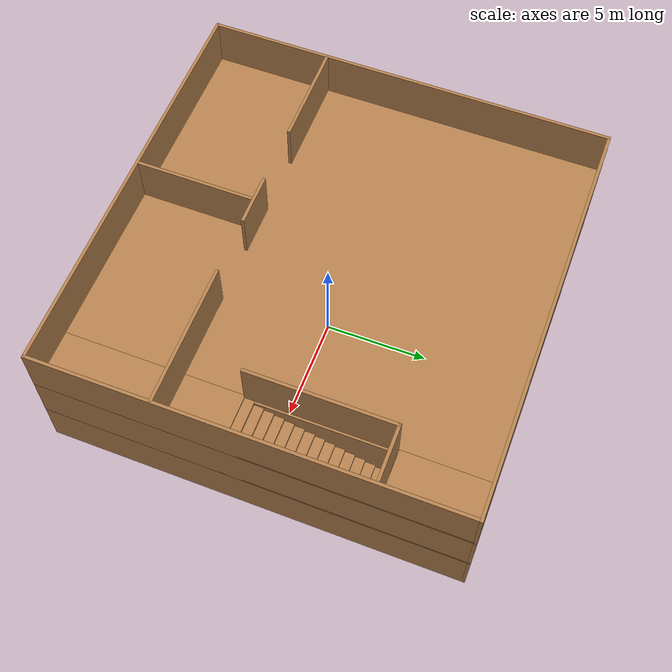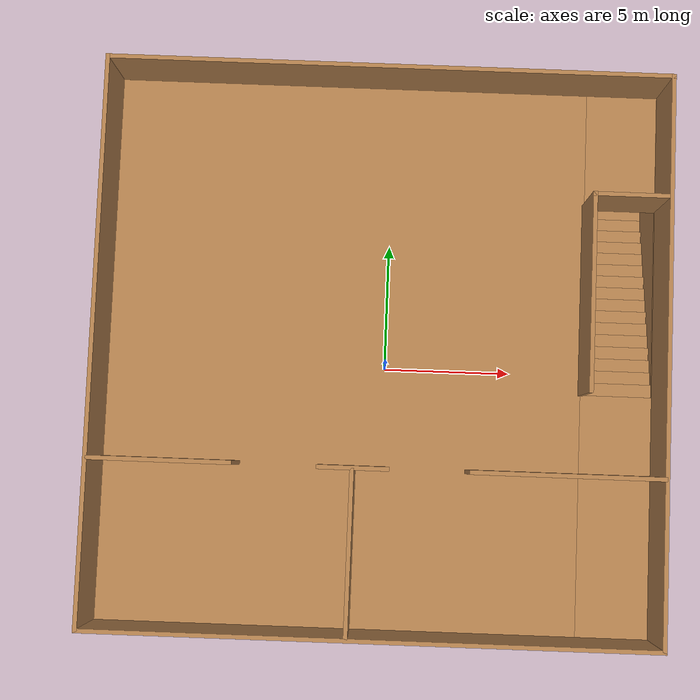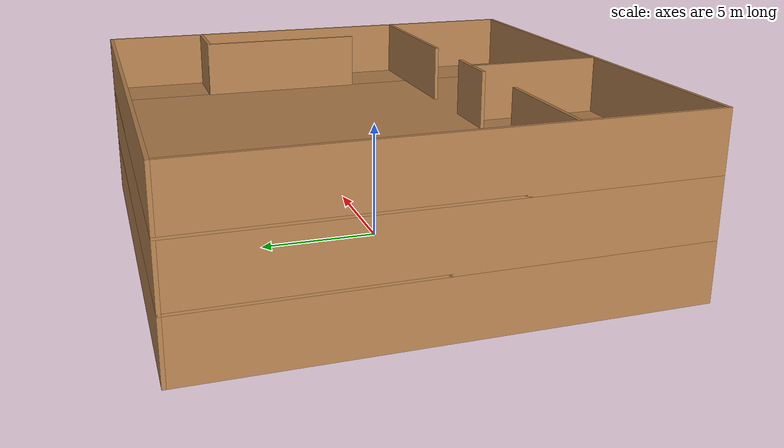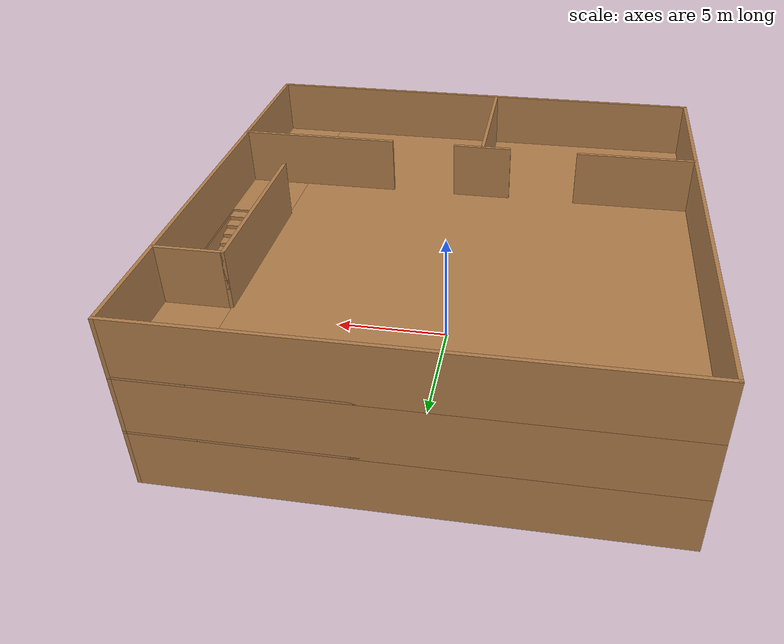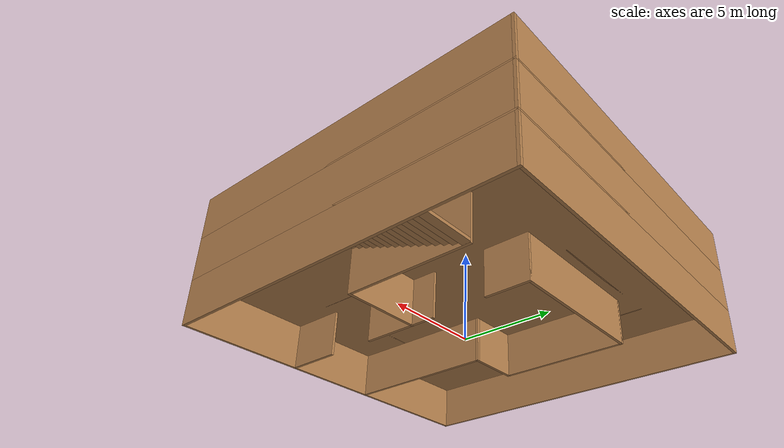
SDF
<?xml version='1.0'?>
<sdf version='1.6'>
  <model name='threefloors'>
    <pose frame=''>-0.192646 0.172435 0 0 -0 0</pose>
    <link name='Floor_0'>
      <pose frame=''>0 0.003245 2.5 0 -0 0</pose>
      <visual name='Floor_0_Visual_0'>
        <pose frame=''>-1.3609 0 0.05 0 -0 0</pose>
        <geometry>
          <box>
            <size>17.2782 20 0.1</size>
          </box>
        </geometry>
        <material>
          <script>
            <uri>file://media/materials/scripts/gazebo.material</uri>
            <name>Gazebo/Wood</name>
          </script>
          <ambient>1 1 1 1</ambient>
        </material>
      </visual>
      <collision name='Floor_0_Collision_0'>
        <geometry>
          <box>
            <size>17.2782 20 0.1</size>
          </box>
        </geometry>
        <pose frame=''>-1.3609 0 0.05 0 -0 0</pose>
      </collision>
      <visual name='Floor_0_Visual_1'>
        <pose frame=''>8.6391 -5.61139 0.05 0 -0 0</pose>
        <geometry>
          <box>
            <size>2.72181 8.77723 0.1</size>
          </box>
        </geometry>
        <material>
          <script>
            <uri>file://media/materials/scripts/gazebo.material</uri>
            <name>Gazebo/Wood</name>
          </script>
          <ambient>1 1 1 1</ambient>
        </material>
      </visual>
      <collision name='Floor_0_Collision_1'>
        <geometry>
          <box>
            <size>2.72181 8.77723 0.1</size>
          </box>
        </geometry>
        <pose frame=''>8.6391 -5.61139 0.05 0 -0 0</pose>
      </collision>
      <visual name='Floor_0_Visual_2'>
        <pose frame=''>9.92615 4.38861 0.05 0 -0 0</pose>
        <geometry>
          <box>
            <size>0.1477 11.2228 0.1</size>
          </box>
        </geometry>
        <material>
          <script>
            <uri>file://media/materials/scripts/gazebo.material</uri>
            <name>Gazebo/Wood</name>
          </script>
          <ambient>1 1 1 1</ambient>
        </material>
      </visual>
      <collision name='Floor_0_Collision_2'>
        <geometry>
          <box>
            <size>0.1477 11.2228 0.1</size>
          </box>
        </geometry>
        <pose frame=''>9.92615 4.38861 0.05 0 -0 0</pose>
      </collision>
      <visual name='Floor_0_Visual_3'>
        <pose frame=''>8.56525 7.86696 0.05 0 -0 0</pose>
        <geometry>
          <box>
            <size>2.57411 4.26607 0.1</size>
          </box>
        </geometry>
        <material>
          <script>
            <uri>file://media/materials/scripts/gazebo.material</uri>
            <name>Gazebo/Wood</name>
          </script>
          <ambient>1 1 1 1</ambient>
        </material>
      </visual>
      <collision name='Floor_0_Collision_3'>
        <geometry>
          <box>
            <size>2.57411 4.26607 0.1</size>
          </box>
        </geometry>
        <pose frame=''>8.56525 7.86696 0.05 0 -0 0</pose>
      </collision>
    </link>
    <link name='Floor_1'>
      <pose frame=''>0 0.003245 5 0 -0 0</pose>
      <visual name='Floor_1_Visual_0'>
        <pose frame=''>-1.36446 0 0.05 0 -0 0</pose>
        <geometry>
          <box>
            <size>17.2711 20 0.1</size>
          </box>
        </geometry>
        <material>
          <script>
            <uri>file://media/materials/scripts/gazebo.material</uri>
            <name>Gazebo/Wood</name>
          </script>
          <ambient>1 1 1 1</ambient>
        </material>
      </visual>
      <collision name='Floor_1_Collision_0'>
        <geometry>
          <box>
            <size>17.2711 20 0.1</size>
          </box>
        </geometry>
        <pose frame=''>-1.36446 0 0.05 0 -0 0</pose>
      </collision>
      <visual name='Floor_1_Visual_1'>
        <pose frame=''>8.63554 -5.61552 0.05 0 -0 0</pose>
        <geometry>
          <box>
            <size>2.72892 8.76896 0.1</size>
          </box>
        </geometry>
        <material>
          <script>
            <uri>file://media/materials/scripts/gazebo.material</uri>
            <name>Gazebo/Wood</name>
          </script>
          <ambient>1 1 1 1</ambient>
        </material>
      </visual>
      <collision name='Floor_1_Collision_1'>
        <geometry>
          <box>
            <size>2.72892 8.76896 0.1</size>
          </box>
        </geometry>
        <pose frame=''>8.63554 -5.61552 0.05 0 -0 0</pose>
      </collision>
      <visual name='Floor_1_Visual_2'>
        <pose frame=''>9.92198 4.38448 0.05 0 -0 0</pose>
        <geometry>
          <box>
            <size>0.15604 11.231 0.1</size>
          </box>
        </geometry>
        <material>
          <script>
            <uri>file://media/materials/scripts/gazebo.material</uri>
            <name>Gazebo/Wood</name>
          </script>
          <ambient>1 1 1 1</ambient>
        </material>
      </visual>
      <collision name='Floor_1_Collision_2'>
        <geometry>
          <box>
            <size>0.15604 11.231 0.1</size>
          </box>
        </geometry>
        <pose frame=''>9.92198 4.38448 0.05 0 -0 0</pose>
      </collision>
      <visual name='Floor_1_Visual_3'>
        <pose frame=''>8.55752 7.88084 0.05 0 -0 0</pose>
        <geometry>
          <box>
            <size>2.57288 4.23831 0.1</size>
          </box>
        </geometry>
        <material>
          <script>
            <uri>file://media/materials/scripts/gazebo.material</uri>
            <name>Gazebo/Wood</name>
          </script>
          <ambient>1 1 1 1</ambient>
        </material>
      </visual>
      <collision name='Floor_1_Collision_3'>
        <geometry>
          <box>
            <size>2.57288 4.23831 0.1</size>
          </box>
        </geometry>
        <pose frame=''>8.55752 7.88084 0.05 0 -0 0</pose>
      </collision>
    </link>
    <link name='Stairs_0'>
      <visual name='Stairs_0_Visual_0'>
        <pose frame=''>8.56525 5.50528 0.083333 0 -0 0</pose>
        <geometry>
          <box>
            <size>2.57411 0.46378 0.166667</size>
          </box>
        </geometry>
        <material>
          <script>
            <uri>file://media/materials/scripts/gazebo.material</uri>
            <name>Gazebo/Wood</name>
          </script>
          <ambient>1 1 1 1</ambient>
        </material>
      </visual>
      <collision name='Stairs_0_Collision_0'>
        <geometry>
          <box>
            <size>2.57411 0.46378 0.166667</size>
          </box>
        </geometry>
        <pose frame=''>8.56525 5.50528 0.083333 0 -0 0</pose>
      </collision>
      <visual name='Stairs_0_Visual_1'>
        <pose frame=''>8.56525 5.0415 0.25 0 -0 0</pose>
        <geometry>
          <box>
            <size>2.57411 0.46378 0.166667</size>
          </box>
        </geometry>
        <material>
          <script>
            <uri>file://media/materials/scripts/gazebo.material</uri>
            <name>Gazebo/Wood</name>
          </script>
          <ambient>1 1 1 1</ambient>
        </material>
      </visual>
      <collision name='Stairs_0_Collision_1'>
        <geometry>
          <box>
            <size>2.57411 0.46378 0.166667</size>
          </box>
        </geometry>
        <pose frame=''>8.56525 5.0415 0.25 0 -0 0</pose>
      </collision>
      <visual name='Stairs_0_Visual_2'>
        <pose frame=''>8.56525 4.57772 0.416667 0 -0 0</pose>
        <geometry>
          <box>
            <size>2.57411 0.46378 0.166667</size>
          </box>
        </geometry>
        <material>
          <script>
            <uri>file://media/materials/scripts/gazebo.material</uri>
            <name>Gazebo/Wood</name>
          </script>
          <ambient>1 1 1 1</ambient>
        </material>
      </visual>
      <collision name='Stairs_0_Collision_2'>
        <geometry>
          <box>
            <size>2.57411 0.46378 0.166667</size>
          </box>
        </geometry>
        <pose frame=''>8.56525 4.57772 0.416667 0 -0 0</pose>
      </collision>
      <visual name='Stairs_0_Visual_3'>
        <pose frame=''>8.56525 4.11394 0.583333 0 -0 0</pose>
        <geometry>
          <box>
            <size>2.57411 0.46378 0.166667</size>
          </box>
        </geometry>
        <material>
          <script>
            <uri>file://media/materials/scripts/gazebo.material</uri>
            <name>Gazebo/Wood</name>
          </script>
          <ambient>1 1 1 1</ambient>
        </material>
      </visual>
      <collision name='Stairs_0_Collision_3'>
        <geometry>
          <box>
            <size>2.57411 0.46378 0.166667</size>
          </box>
        </geometry>
        <pose frame=''>8.56525 4.11394 0.583333 0 -0 0</pose>
      </collision>
      <visual name='Stairs_0_Visual_4'>
        <pose frame=''>8.56525 3.65016 0.75 0 -0 0</pose>
        <geometry>
          <box>
            <size>2.57411 0.46378 0.166667</size>
          </box>
        </geometry>
        <material>
          <script>
            <uri>file://media/materials/scripts/gazebo.material</uri>
            <name>Gazebo/Wood</name>
          </script>
          <ambient>1 1 1 1</ambient>
        </material>
      </visual>
      <collision name='Stairs_0_Collision_4'>
        <geometry>
          <box>
            <size>2.57411 0.46378 0.166667</size>
          </box>
        </geometry>
        <pose frame=''>8.56525 3.65016 0.75 0 -0 0</pose>
      </collision>
      <visual name='Stairs_0_Visual_5'>
        <pose frame=''>8.56525 3.18638 0.916667 0 -0 0</pose>
        <geometry>
          <box>
            <size>2.57411 0.46378 0.166667</size>
          </box>
        </geometry>
        <material>
          <script>
            <uri>file://media/materials/scripts/gazebo.material</uri>
            <name>Gazebo/Wood</name>
          </script>
          <ambient>1 1 1 1</ambient>
        </material>
      </visual>
      <collision name='Stairs_0_Collision_5'>
        <geometry>
          <box>
            <size>2.57411 0.46378 0.166667</size>
          </box>
        </geometry>
        <pose frame=''>8.56525 3.18638 0.916667 0 -0 0</pose>
      </collision>
      <visual name='Stairs_0_Visual_6'>
        <pose frame=''>8.56525 2.7226 1.08333 0 -0 0</pose>
        <geometry>
          <box>
            <size>2.57411 0.46378 0.166667</size>
          </box>
        </geometry>
        <material>
          <script>
            <uri>file://media/materials/scripts/gazebo.material</uri>
            <name>Gazebo/Wood</name>
          </script>
          <ambient>1 1 1 1</ambient>
        </material>
      </visual>
      <collision name='Stairs_0_Collision_6'>
        <geometry>
          <box>
            <size>2.57411 0.46378 0.166667</size>
          </box>
        </geometry>
        <pose frame=''>8.56525 2.7226 1.08333 0 -0 0</pose>
      </collision>
      <visual name='Stairs_0_Visual_7'>
        <pose frame=''>8.56525 2.25882 1.25 0 -0 0</pose>
        <geometry>
          <box>
            <size>2.57411 0.46378 0.166667</size>
          </box>
        </geometry>
        <material>
          <script>
            <uri>file://media/materials/scripts/gazebo.material</uri>
            <name>Gazebo/Wood</name>
          </script>
          <ambient>1 1 1 1</ambient>
        </material>
      </visual>
      <collision name='Stairs_0_Collision_7'>
        <geometry>
          <box>
            <size>2.57411 0.46378 0.166667</size>
          </box>
        </geometry>
        <pose frame=''>8.56525 2.25882 1.25 0 -0 0</pose>
      </collision>
      <visual name='Stairs_0_Visual_8'>
        <pose frame=''>8.56525 1.79504 1.41667 0 -0 0</pose>
        <geometry>
          <box>
            <size>2.57411 0.46378 0.166667</size>
          </box>
        </geometry>
        <material>
          <script>
            <uri>file://media/materials/scripts/gazebo.material</uri>
            <name>Gazebo/Wood</name>
          </script>
          <ambient>1 1 1 1</ambient>
        </material>
      </visual>
      <collision name='Stairs_0_Collision_8'>
        <geometry>
          <box>
            <size>2.57411 0.46378 0.166667</size>
          </box>
        </geometry>
        <pose frame=''>8.56525 1.79504 1.41667 0 -0 0</pose>
      </collision>
      <visual name='Stairs_0_Visual_9'>
        <pose frame=''>8.56525 1.33126 1.58333 0 -0 0</pose>
        <geometry>
          <box>
            <size>2.57411 0.46378 0.166667</size>
          </box>
        </geometry>
        <material>
          <script>
            <uri>file://media/materials/scripts/gazebo.material</uri>
            <name>Gazebo/Wood</name>
          </script>
          <ambient>1 1 1 1</ambient>
        </material>
      </visual>
      <collision name='Stairs_0_Collision_9'>
        <geometry>
          <box>
            <size>2.57411 0.46378 0.166667</size>
          </box>
        </geometry>
        <pose frame=''>8.56525 1.33126 1.58333 0 -0 0</pose>
      </collision>
      <visual name='Stairs_0_Visual_10'>
        <pose frame=''>8.56525 0.867484 1.75 0 -0 0</pose>
        <geometry>
          <box>
            <size>2.57411 0.46378 0.166667</size>
          </box>
        </geometry>
        <material>
          <script>
            <uri>file://media/materials/scripts/gazebo.material</uri>
            <name>Gazebo/Wood</name>
          </script>
          <ambient>1 1 1 1</ambient>
        </material>
      </visual>
      <collision name='Stairs_0_Collision_10'>
        <geometry>
          <box>
            <size>2.57411 0.46378 0.166667</size>
          </box>
        </geometry>
        <pose frame=''>8.56525 0.867484 1.75 0 -0 0</pose>
      </collision>
      <visual name='Stairs_0_Visual_11'>
        <pose frame=''>8.56525 0.403704 1.91667 0 -0 0</pose>
        <geometry>
          <box>
            <size>2.57411 0.46378 0.166667</size>
          </box>
        </geometry>
        <material>
          <script>
            <uri>file://media/materials/scripts/gazebo.material</uri>
            <name>Gazebo/Wood</name>
          </script>
          <ambient>1 1 1 1</ambient>
        </material>
      </visual>
      <collision name='Stairs_0_Collision_11'>
        <geometry>
          <box>
            <size>2.57411 0.46378 0.166667</size>
          </box>
        </geometry>
        <pose frame=''>8.56525 0.403704 1.91667 0 -0 0</pose>
      </collision>
      <visual name='Stairs_0_Visual_12'>
        <pose frame=''>8.56525 -0.060075 2.08333 0 -0 0</pose>
        <geometry>
          <box>
            <size>2.57411 0.46378 0.166667</size>
          </box>
        </geometry>
        <material>
          <script>
            <uri>file://media/materials/scripts/gazebo.material</uri>
            <name>Gazebo/Wood</name>
          </script>
          <ambient>1 1 1 1</ambient>
        </material>
      </visual>
      <collision name='Stairs_0_Collision_12'>
        <geometry>
          <box>
            <size>2.57411 0.46378 0.166667</size>
          </box>
        </geometry>
        <pose frame=''>8.56525 -0.060075 2.08333 0 -0 0</pose>
      </collision>
      <visual name='Stairs_0_Visual_13'>
        <pose frame=''>8.56525 -0.523855 2.25 0 -0 0</pose>
        <geometry>
          <box>
            <size>2.57411 0.46378 0.166667</size>
          </box>
        </geometry>
        <material>
          <script>
            <uri>file://media/materials/scripts/gazebo.material</uri>
            <name>Gazebo/Wood</name>
          </script>
          <ambient>1 1 1 1</ambient>
        </material>
      </visual>
      <collision name='Stairs_0_Collision_13'>
        <geometry>
          <box>
            <size>2.57411 0.46378 0.166667</size>
          </box>
        </geometry>
        <pose frame=''>8.56525 -0.523855 2.25 0 -0 0</pose>
      </collision>
      <visual name='Stairs_0_Visual_14'>
        <pose frame=''>8.56525 -0.987635 2.41667 0 -0 0</pose>
        <geometry>
          <box>
            <size>2.57411 0.46378 0.166667</size>
          </box>
        </geometry>
        <material>
          <script>
            <uri>file://media/materials/scripts/gazebo.material</uri>
            <name>Gazebo/Wood</name>
          </script>
          <ambient>1 1 1 1</ambient>
        </material>
      </visual>
      <collision name='Stairs_0_Collision_14'>
        <geometry>
          <box>
            <size>2.57411 0.46378 0.166667</size>
          </box>
        </geometry>
        <pose frame=''>8.56525 -0.987635 2.41667 0 -0 0</pose>
      </collision>
    </link>
    <link name='Stairs_2'>
      <visual name='Stairs_2_Visual_0'>
        <pose frame=''>8.55752 5.53184 2.58333 0 -0 0</pose>
        <geometry>
          <box>
            <size>2.57288 0.466181 0.166667</size>
          </box>
        </geometry>
        <material>
          <script>
            <uri>file://media/materials/scripts/gazebo.material</uri>
            <name>Gazebo/Wood</name>
          </script>
          <ambient>1 1 1 1</ambient>
        </material>
      </visual>
      <collision name='Stairs_2_Collision_0'>
        <geometry>
          <box>
            <size>2.57288 0.466181 0.166667</size>
          </box>
        </geometry>
        <pose frame=''>8.55752 5.53184 2.58333 0 -0 0</pose>
      </collision>
      <visual name='Stairs_2_Visual_1'>
        <pose frame=''>8.55752 5.06566 2.75 0 -0 0</pose>
        <geometry>
          <box>
            <size>2.57288 0.466181 0.166667</size>
          </box>
        </geometry>
        <material>
          <script>
            <uri>file://media/materials/scripts/gazebo.material</uri>
            <name>Gazebo/Wood</name>
          </script>
          <ambient>1 1 1 1</ambient>
        </material>
      </visual>
      <collision name='Stairs_2_Collision_1'>
        <geometry>
          <box>
            <size>2.57288 0.466181 0.166667</size>
          </box>
        </geometry>
        <pose frame=''>8.55752 5.06566 2.75 0 -0 0</pose>
      </collision>
      <visual name='Stairs_2_Visual_2'>
        <pose frame=''>8.55752 4.59948 2.91667 0 -0 0</pose>
        <geometry>
          <box>
            <size>2.57288 0.466181 0.166667</size>
          </box>
        </geometry>
        <material>
          <script>
            <uri>file://media/materials/scripts/gazebo.material</uri>
            <name>Gazebo/Wood</name>
          </script>
          <ambient>1 1 1 1</ambient>
        </material>
      </visual>
      <collision name='Stairs_2_Collision_2'>
        <geometry>
          <box>
            <size>2.57288 0.466181 0.166667</size>
          </box>
        </geometry>
        <pose frame=''>8.55752 4.59948 2.91667 0 -0 0</pose>
      </collision>
      <visual name='Stairs_2_Visual_3'>
        <pose frame=''>8.55752 4.1333 3.08333 0 -0 0</pose>
        <geometry>
          <box>
            <size>2.57288 0.466181 0.166667</size>
          </box>
        </geometry>
        <material>
          <script>
            <uri>file://media/materials/scripts/gazebo.material</uri>
            <name>Gazebo/Wood</name>
          </script>
          <ambient>1 1 1 1</ambient>
        </material>
      </visual>
      <collision name='Stairs_2_Collision_3'>
        <geometry>
          <box>
            <size>2.57288 0.466181 0.166667</size>
          </box>
        </geometry>
        <pose frame=''>8.55752 4.1333 3.08333 0 -0 0</pose>
      </collision>
      <visual name='Stairs_2_Visual_4'>
        <pose frame=''>8.55752 3.66711 3.25 0 -0 0</pose>
        <geometry>
          <box>
            <size>2.57288 0.466181 0.166667</size>
          </box>
        </geometry>
        <material>
          <script>
            <uri>file://media/materials/scripts/gazebo.material</uri>
            <name>Gazebo/Wood</name>
          </script>
          <ambient>1 1 1 1</ambient>
        </material>
      </visual>
      <collision name='Stairs_2_Collision_4'>
        <geometry>
          <box>
            <size>2.57288 0.466181 0.166667</size>
          </box>
        </geometry>
        <pose frame=''>8.55752 3.66711 3.25 0 -0 0</pose>
      </collision>
      <visual name='Stairs_2_Visual_5'>
        <pose frame=''>8.55752 3.20093 3.41667 0 -0 0</pose>
        <geometry>
          <box>
            <size>2.57288 0.466181 0.166667</size>
          </box>
        </geometry>
        <material>
          <script>
            <uri>file://media/materials/scripts/gazebo.material</uri>
            <name>Gazebo/Wood</name>
          </script>
          <ambient>1 1 1 1</ambient>
        </material>
      </visual>
      <collision name='Stairs_2_Collision_5'>
        <geometry>
          <box>
            <size>2.57288 0.466181 0.166667</size>
          </box>
        </geometry>
        <pose frame=''>8.55752 3.20093 3.41667 0 -0 0</pose>
      </collision>
      <visual name='Stairs_2_Visual_6'>
        <pose frame=''>8.55752 2.73475 3.58333 0 -0 0</pose>
        <geometry>
          <box>
            <size>2.57288 0.466181 0.166667</size>
          </box>
        </geometry>
        <material>
          <script>
            <uri>file://media/materials/scripts/gazebo.material</uri>
            <name>Gazebo/Wood</name>
          </script>
          <ambient>1 1 1 1</ambient>
        </material>
      </visual>
      <collision name='Stairs_2_Collision_6'>
        <geometry>
          <box>
            <size>2.57288 0.466181 0.166667</size>
          </box>
        </geometry>
        <pose frame=''>8.55752 2.73475 3.58333 0 -0 0</pose>
      </collision>
      <visual name='Stairs_2_Visual_7'>
        <pose frame=''>8.55752 2.26857 3.75 0 -0 0</pose>
        <geometry>
          <box>
            <size>2.57288 0.466181 0.166667</size>
          </box>
        </geometry>
        <material>
          <script>
            <uri>file://media/materials/scripts/gazebo.material</uri>
            <name>Gazebo/Wood</name>
          </script>
          <ambient>1 1 1 1</ambient>
        </material>
      </visual>
      <collision name='Stairs_2_Collision_7'>
        <geometry>
          <box>
            <size>2.57288 0.466181 0.166667</size>
          </box>
        </geometry>
        <pose frame=''>8.55752 2.26857 3.75 0 -0 0</pose>
      </collision>
      <visual name='Stairs_2_Visual_8'>
        <pose frame=''>8.55752 1.80239 3.91667 0 -0 0</pose>
        <geometry>
          <box>
            <size>2.57288 0.466181 0.166667</size>
          </box>
        </geometry>
        <material>
          <script>
            <uri>file://media/materials/scripts/gazebo.material</uri>
            <name>Gazebo/Wood</name>
          </script>
          <ambient>1 1 1 1</ambient>
        </material>
      </visual>
      <collision name='Stairs_2_Collision_8'>
        <geometry>
          <box>
            <size>2.57288 0.466181 0.166667</size>
          </box>
        </geometry>
        <pose frame=''>8.55752 1.80239 3.91667 0 -0 0</pose>
      </collision>
      <visual name='Stairs_2_Visual_9'>
        <pose frame=''>8.55752 1.33621 4.08333 0 -0 0</pose>
        <geometry>
          <box>
            <size>2.57288 0.466181 0.166667</size>
          </box>
        </geometry>
        <material>
          <script>
            <uri>file://media/materials/scripts/gazebo.material</uri>
            <name>Gazebo/Wood</name>
          </script>
          <ambient>1 1 1 1</ambient>
        </material>
      </visual>
      <collision name='Stairs_2_Collision_9'>
        <geometry>
          <box>
            <size>2.57288 0.466181 0.166667</size>
          </box>
        </geometry>
        <pose frame=''>8.55752 1.33621 4.08333 0 -0 0</pose>
      </collision>
      <visual name='Stairs_2_Visual_10'>
        <pose frame=''>8.55752 0.870026 4.25 0 -0 0</pose>
        <geometry>
          <box>
            <size>2.57288 0.466181 0.166667</size>
          </box>
        </geometry>
        <material>
          <script>
            <uri>file://media/materials/scripts/gazebo.material</uri>
            <name>Gazebo/Wood</name>
          </script>
          <ambient>1 1 1 1</ambient>
        </material>
      </visual>
      <collision name='Stairs_2_Collision_10'>
        <geometry>
          <box>
            <size>2.57288 0.466181 0.166667</size>
          </box>
        </geometry>
        <pose frame=''>8.55752 0.870026 4.25 0 -0 0</pose>
      </collision>
      <visual name='Stairs_2_Visual_11'>
        <pose frame=''>8.55752 0.403844 4.41667 0 -0 0</pose>
        <geometry>
          <box>
            <size>2.57288 0.466181 0.166667</size>
          </box>
        </geometry>
        <material>
          <script>
            <uri>file://media/materials/scripts/gazebo.material</uri>
            <name>Gazebo/Wood</name>
          </script>
          <ambient>1 1 1 1</ambient>
        </material>
      </visual>
      <collision name='Stairs_2_Collision_11'>
        <geometry>
          <box>
            <size>2.57288 0.466181 0.166667</size>
          </box>
        </geometry>
        <pose frame=''>8.55752 0.403844 4.41667 0 -0 0</pose>
      </collision>
      <visual name='Stairs_2_Visual_12'>
        <pose frame=''>8.55752 -0.062337 4.58333 0 -0 0</pose>
        <geometry>
          <box>
            <size>2.57288 0.466181 0.166667</size>
          </box>
        </geometry>
        <material>
          <script>
            <uri>file://media/materials/scripts/gazebo.material</uri>
            <name>Gazebo/Wood</name>
          </script>
          <ambient>1 1 1 1</ambient>
        </material>
      </visual>
      <collision name='Stairs_2_Collision_12'>
        <geometry>
          <box>
            <size>2.57288 0.466181 0.166667</size>
          </box>
        </geometry>
        <pose frame=''>8.55752 -0.062337 4.58333 0 -0 0</pose>
      </collision>
      <visual name='Stairs_2_Visual_13'>
        <pose frame=''>8.55752 -0.528519 4.75 0 -0 0</pose>
        <geometry>
          <box>
            <size>2.57288 0.466181 0.166667</size>
          </box>
        </geometry>
        <material>
          <script>
            <uri>file://media/materials/scripts/gazebo.material</uri>
            <name>Gazebo/Wood</name>
          </script>
          <ambient>1 1 1 1</ambient>
        </material>
      </visual>
      <collision name='Stairs_2_Collision_13'>
        <geometry>
          <box>
            <size>2.57288 0.466181 0.166667</size>
          </box>
        </geometry>
        <pose frame=''>8.55752 -0.528519 4.75 0 -0 0</pose>
      </collision>
      <visual name='Stairs_2_Visual_14'>
        <pose frame=''>8.55752 -0.9947 4.91667 0 -0 0</pose>
        <geometry>
          <box>
            <size>2.57288 0.466181 0.166667</size>
          </box>
        </geometry>
        <material>
          <script>
            <uri>file://media/materials/scripts/gazebo.material</uri>
            <name>Gazebo/Wood</name>
          </script>
          <ambient>1 1 1 1</ambient>
        </material>
      </visual>
      <collision name='Stairs_2_Collision_14'>
        <geometry>
          <box>
            <size>2.57288 0.466181 0.166667</size>
          </box>
        </geometry>
        <pose frame=''>8.55752 -0.9947 4.91667 0 -0 0</pose>
      </collision>
    </link>
    <link name='Wall_10'>
      <collision name='Wall_10_Collision'>
        <geometry>
          <box>
            <size>20 0.15 2.5</size>
          </box>
        </geometry>
        <pose frame=''>0 0 1.25 0 -0 0</pose>
      </collision>
      <visual name='Wall_10_Visual'>
        <pose frame=''>0 0 1.25 0 -0 0</pose>
        <geometry>
          <box>
            <size>20 0.15 2.5</size>
          </box>
        </geometry>
        <material>
          <script>
            <uri>file://media/materials/scripts/gazebo.material</uri>
            <name>Gazebo/Wood</name>
          </script>
          <ambient>1 1 1 1</ambient>
        </material>
      </visual>
      <pose frame=''>9.925 0.003245 0 0 -0 1.5708</pose>
    </link>
    <link name='Wall_11'>
      <collision name='Wall_11_Collision'>
        <geometry>
          <box>
            <size>20 0.15 2.5</size>
          </box>
        </geometry>
        <pose frame=''>0 0 1.25 0 -0 0</pose>
      </collision>
      <visual name='Wall_11_Visual'>
        <pose frame=''>0 0 1.25 0 -0 0</pose>
        <geometry>
          <box>
            <size>20 0.15 2.5</size>
          </box>
        </geometry>
        <material>
          <script>
            <uri>file://media/materials/scripts/gazebo.material</uri>
            <name>Gazebo/Wood</name>
          </script>
          <ambient>1 1 1 1</ambient>
        </material>
      </visual>
      <pose frame=''>0 9.92825 0 0 -0 3.14159</pose>
    </link>
    <link name='Wall_13'>
      <collision name='Wall_13_Collision'>
        <geometry>
          <box>
            <size>20 0.15 2.5</size>
          </box>
        </geometry>
        <pose frame=''>0 0 1.25 0 -0 0</pose>
      </collision>
      <visual name='Wall_13_Visual'>
        <pose frame=''>0 0 1.25 0 -0 0</pose>
        <geometry>
          <box>
            <size>20 0.15 2.5</size>
          </box>
        </geometry>
        <material>
          <script>
            <uri>file://media/materials/scripts/gazebo.material</uri>
            <name>Gazebo/Wood</name>
          </script>
          <ambient>1 1 1 1</ambient>
        </material>
      </visual>
      <pose frame=''>-9.925 0.003245 2.5 0 0 -1.5708</pose>
    </link>
    <link name='Wall_14'>
      <collision name='Wall_14_Collision'>
        <geometry>
          <box>
            <size>20 0.15 2.5</size>
          </box>
        </geometry>
        <pose frame=''>0 0 1.25 0 -0 0</pose>
      </collision>
      <visual name='Wall_14_Visual'>
        <pose frame=''>0 0 1.25 0 -0 0</pose>
        <geometry>
          <box>
            <size>20 0.15 2.5</size>
          </box>
        </geometry>
        <material>
          <script>
            <uri>file://media/materials/scripts/gazebo.material</uri>
            <name>Gazebo/Wood</name>
          </script>
          <ambient>1 1 1 1</ambient>
        </material>
      </visual>
      <pose frame=''>0 -9.92175 2.5 0 -0 0</pose>
    </link>
    <link name='Wall_15'>
      <collision name='Wall_15_Collision'>
        <geometry>
          <box>
            <size>20 0.15 2.5</size>
          </box>
        </geometry>
        <pose frame=''>0 0 1.25 0 -0 0</pose>
      </collision>
      <visual name='Wall_15_Visual'>
        <pose frame=''>0 0 1.25 0 -0 0</pose>
        <geometry>
          <box>
            <size>20 0.15 2.5</size>
          </box>
        </geometry>
        <material>
          <script>
            <uri>file://media/materials/scripts/gazebo.material</uri>
            <name>Gazebo/Wood</name>
          </script>
          <ambient>1 1 1 1</ambient>
        </material>
      </visual>
      <pose frame=''>9.925 0.003245 2.5 0 -0 1.5708</pose>
    </link>
    <link name='Wall_16'>
      <collision name='Wall_16_Collision'>
        <geometry>
          <box>
            <size>20 0.15 2.5</size>
          </box>
        </geometry>
        <pose frame=''>0 0 1.25 0 -0 0</pose>
      </collision>
      <visual name='Wall_16_Visual'>
        <pose frame=''>0 0 1.25 0 -0 0</pose>
        <geometry>
          <box>
            <size>20 0.15 2.5</size>
          </box>
        </geometry>
        <material>
          <script>
            <uri>file://media/materials/scripts/gazebo.material</uri>
            <name>Gazebo/Wood</name>
          </script>
          <ambient>1 1 1 1</ambient>
        </material>
      </visual>
      <pose frame=''>0 9.92825 2.5 0 -0 3.14159</pose>
    </link>
    <link name='Wall_18'>
      <collision name='Wall_18_Collision'>
        <geometry>
          <box>
            <size>20 0.15 2.5</size>
          </box>
        </geometry>
        <pose frame=''>0 0 1.25 0 -0 0</pose>
      </collision>
      <visual name='Wall_18_Visual'>
        <pose frame=''>0 0 1.25 0 -0 0</pose>
        <geometry>
          <box>
            <size>20 0.15 2.5</size>
          </box>
        </geometry>
        <material>
          <script>
            <uri>file://media/materials/scripts/gazebo.material</uri>
            <name>Gazebo/Wood</name>
          </script>
          <ambient>1 1 1 1</ambient>
        </material>
      </visual>
      <pose frame=''>-9.925 0.003245 5 0 0 -1.5708</pose>
    </link>
    <link name='Wall_19'>
      <collision name='Wall_19_Collision'>
        <geometry>
          <box>
            <size>20 0.15 2.5</size>
          </box>
        </geometry>
        <pose frame=''>0 0 1.25 0 -0 0</pose>
      </collision>
      <visual name='Wall_19_Visual'>
        <pose frame=''>0 0 1.25 0 -0 0</pose>
        <geometry>
          <box>
            <size>20 0.15 2.5</size>
          </box>
        </geometry>
        <material>
          <script>
            <uri>file://media/materials/scripts/gazebo.material</uri>
            <name>Gazebo/Wood</name>
          </script>
          <ambient>1 1 1 1</ambient>
        </material>
      </visual>
      <pose frame=''>0 -9.92175 5 0 -0 0</pose>
    </link>
    <link name='Wall_20'>
      <collision name='Wall_20_Collision'>
        <geometry>
          <box>
            <size>20 0.15 2.5</size>
          </box>
        </geometry>
        <pose frame=''>0 0 1.25 0 -0 0</pose>
      </collision>
      <visual name='Wall_20_Visual'>
        <pose frame=''>0 0 1.25 0 -0 0</pose>
        <geometry>
          <box>
            <size>20 0.15 2.5</size>
          </box>
        </geometry>
        <material>
          <script>
            <uri>file://media/materials/scripts/gazebo.material</uri>
            <name>Gazebo/Wood</name>
          </script>
          <ambient>1 1 1 1</ambient>
        </material>
      </visual>
      <pose frame=''>9.925 0.003245 5 0 -0 1.5708</pose>
    </link>
    <link name='Wall_21'>
      <collision name='Wall_21_Collision'>
        <geometry>
          <box>
            <size>20 0.15 2.5</size>
          </box>
        </geometry>
        <pose frame=''>0 0 1.25 0 -0 0</pose>
      </collision>
      <visual name='Wall_21_Visual'>
        <pose frame=''>0 0 1.25 0 -0 0</pose>
        <geometry>
          <box>
            <size>20 0.15 2.5</size>
          </box>
        </geometry>
        <material>
          <script>
            <uri>file://media/materials/scripts/gazebo.material</uri>
            <name>Gazebo/Wood</name>
          </script>
          <ambient>1 1 1 1</ambient>
        </material>
      </visual>
      <pose frame=''>0 9.92825 5 0 -0 3.14159</pose>
    </link>
    <link name='Wall_22'>
      <collision name='Wall_22_Collision'>
        <geometry>
          <box>
            <size>4.25 0.15 2.5</size>
          </box>
        </geometry>
        <pose frame=''>0 0 1.25 0 -0 0</pose>
      </collision>
      <visual name='Wall_22_Visual'>
        <pose frame=''>0 0 1.25 0 -0 0</pose>
        <geometry>
          <box>
            <size>4.25 0.15 2.5</size>
          </box>
        </geometry>
        <material>
          <script>
            <uri>file://media/materials/scripts/gazebo.material</uri>
            <name>Gazebo/Wood</name>
          </script>
          <ambient>1 1 1 1</ambient>
        </material>
      </visual>
      <pose frame=''>5.11562 -1.2343 0 0 -0 3.14159</pose>
    </link>
    <link name='Wall_23'>
      <collision name='Wall_23_Collision'>
        <geometry>
          <box>
            <size>3 0.15 2.5</size>
          </box>
        </geometry>
        <pose frame=''>0 0 1.25 0 -0 0</pose>
      </collision>
      <visual name='Wall_23_Visual'>
        <pose frame=''>0 0 1.25 0 -0 0</pose>
        <geometry>
          <box>
            <size>3 0.15 2.5</size>
          </box>
        </geometry>
        <material>
          <script>
            <uri>file://media/materials/scripts/gazebo.material</uri>
            <name>Gazebo/Wood</name>
          </script>
          <ambient>1 1 1 1</ambient>
        </material>
      </visual>
      <pose frame=''>3.06562 -2.6593 0 0 0 -1.5708</pose>
    </link>
    <link name='Wall_25'>
      <collision name='Wall_25_Collision'>
        <geometry>
          <box>
            <size>3 0.15 2.5</size>
          </box>
        </geometry>
        <pose frame=''>0 0 1.25 0 -0 0</pose>
      </collision>
      <visual name='Wall_25_Visual'>
        <pose frame=''>0 0 1.25 0 -0 0</pose>
        <geometry>
          <box>
            <size>3 0.15 2.5</size>
          </box>
        </geometry>
        <material>
          <script>
            <uri>file://media/materials/scripts/gazebo.material</uri>
            <name>Gazebo/Wood</name>
          </script>
          <ambient>1 1 1 1</ambient>
        </material>
      </visual>
      <pose frame=''>3.05905 -8.39691 0 0 -0 1.5708</pose>
    </link>
    <link name='Wall_27'>
      <collision name='Wall_27_Collision'>
        <geometry>
          <box>
            <size>7 0.15 2.5</size>
          </box>
        </geometry>
        <pose frame=''>0 0 1.25 0 -0 0</pose>
      </collision>
      <visual name='Wall_27_Visual'>
        <pose frame=''>0 0 1.25 0 -0 0</pose>
        <geometry>
          <box>
            <size>7 0.15 2.5</size>
          </box>
        </geometry>
        <material>
          <script>
            <uri>file://media/materials/scripts/gazebo.material</uri>
            <name>Gazebo/Wood</name>
          </script>
          <ambient>1 1 1 1</ambient>
        </material>
      </visual>
      <pose frame=''>7.16563 2.1907 0 0 -0 1.5708</pose>
    </link>
    <link name='Wall_29'>
      <collision name='Wall_29_Collision'>
        <geometry>
          <box>
            <size>8.75 0.15 2.5</size>
          </box>
        </geometry>
        <pose frame=''>0 0 1.25 0 -0 0</pose>
      </collision>
      <visual name='Wall_29_Visual'>
        <pose frame=''>0 0 1.25 0 -0 0</pose>
        <geometry>
          <box>
            <size>8.75 0.15 2.5</size>
          </box>
        </geometry>
        <material>
          <script>
            <uri>file://media/materials/scripts/gazebo.material</uri>
            <name>Gazebo/Wood</name>
          </script>
          <ambient>1 1 1 1</ambient>
        </material>
      </visual>
      <pose frame=''>-2.3117 -5.62824 0 0 -0 1.5708</pose>
    </link>
    <link name='Wall_30'>
      <collision name='Wall_30_Collision'>
        <geometry>
          <box>
            <size>3 0.15 2.5</size>
          </box>
        </geometry>
        <pose frame=''>0 0 1.25 0 -0 0</pose>
      </collision>
      <visual name='Wall_30_Visual'>
        <pose frame=''>0 0 1.25 0 -0 0</pose>
        <geometry>
          <box>
            <size>3 0.15 2.5</size>
          </box>
        </geometry>
        <material>
          <script>
            <uri>file://media/materials/scripts/gazebo.material</uri>
            <name>Gazebo/Wood</name>
          </script>
          <ambient>1 1 1 1</ambient>
        </material>
      </visual>
      <pose frame=''>-3.7367 -1.32824 0 0 -0 3.14159</pose>
    </link>
    <link name='Wall_34'>
      <collision name='Wall_34_Collision'>
        <geometry>
          <box>
            <size>7.25 0.15 2.5</size>
          </box>
        </geometry>
        <pose frame=''>0 0 1.25 0 -0 0</pose>
      </collision>
      <visual name='Wall_34_Visual'>
        <pose frame=''>0 0 1.25 0 -0 0</pose>
        <geometry>
          <box>
            <size>7.25 0.15 2.5</size>
          </box>
        </geometry>
        <material>
          <script>
            <uri>file://media/materials/scripts/gazebo.material</uri>
            <name>Gazebo/Wood</name>
          </script>
          <ambient>1 1 1 1</ambient>
        </material>
      </visual>
      <pose frame=''>-5.1617 2.22175 0 0 -0 1.5708</pose>
    </link>
    <link name='Wall_37'>
      <collision name='Wall_37_Collision'>
        <geometry>
          <box>
            <size>8.5 0.15 2.5</size>
          </box>
        </geometry>
        <pose frame=''>0 0 1.25 0 -0 0</pose>
      </collision>
      <visual name='Wall_37_Visual'>
        <pose frame=''>0 0 1.25 0 -0 0</pose>
        <geometry>
          <box>
            <size>8.5 0.15 2.5</size>
          </box>
        </geometry>
        <material>
          <script>
            <uri>file://media/materials/scripts/gazebo.material</uri>
            <name>Gazebo/Wood</name>
          </script>
          <ambient>1 1 1 1</ambient>
        </material>
      </visual>
      <pose frame=''>-0.986701 5.77175 0 0 -0 0</pose>
    </link>
    <link name='Wall_38'>
      <collision name='Wall_38_Collision'>
        <geometry>
          <box>
            <size>2.5 0.15 2.5</size>
          </box>
        </geometry>
        <pose frame=''>0 0 1.25 0 -0 0</pose>
      </collision>
      <visual name='Wall_38_Visual'>
        <pose frame=''>0 0 1.25 0 -0 0</pose>
        <geometry>
          <box>
            <size>2.5 0.15 2.5</size>
          </box>
        </geometry>
        <material>
          <script>
            <uri>file://media/materials/scripts/gazebo.material</uri>
            <name>Gazebo/Wood</name>
          </script>
          <ambient>1 1 1 1</ambient>
        </material>
      </visual>
      <pose frame=''>3.1883 4.59675 0 0 0 -1.5708</pose>
    </link>
    <link name='Wall_40'>
      <collision name='Wall_40_Collision'>
        <geometry>
          <box>
            <size>1.5 0.15 2.5</size>
          </box>
        </geometry>
        <pose frame=''>0 0 1.25 0 -0 0</pose>
      </collision>
      <visual name='Wall_40_Visual'>
        <pose frame=''>0 0 1.25 0 -0 0</pose>
        <geometry>
          <box>
            <size>1.5 0.15 2.5</size>
          </box>
        </geometry>
        <material>
          <script>
            <uri>file://media/materials/scripts/gazebo.material</uri>
            <name>Gazebo/Wood</name>
          </script>
          <ambient>1 1 1 1</ambient>
        </material>
      </visual>
      <pose frame=''>3.06562 -0.559299 0 0 -0 1.5708</pose>
    </link>
    <link name='Wall_42'>
      <collision name='Wall_42_Collision'>
        <geometry>
          <box>
            <size>7 0.15 2.5</size>
          </box>
        </geometry>
        <pose frame=''>0 0 1.25 0 -0 0</pose>
      </collision>
      <visual name='Wall_42_Visual'>
        <pose frame=''>0 0 1.25 0 -0 0</pose>
        <geometry>
          <box>
            <size>7 0.15 2.5</size>
          </box>
        </geometry>
        <material>
          <script>
            <uri>file://media/materials/scripts/gazebo.material</uri>
            <name>Gazebo/Wood</name>
          </script>
          <ambient>1 1 1 1</ambient>
        </material>
      </visual>
      <pose frame=''>7.36813 2.38799 2.5 0 0 -1.5708</pose>
    </link>
    <link name='Wall_43'>
      <collision name='Wall_43_Collision'>
        <geometry>
          <box>
            <size>6 0.15 2.5</size>
          </box>
        </geometry>
        <pose frame=''>0 0 1.25 0 -0 0</pose>
      </collision>
      <visual name='Wall_43_Visual'>
        <pose frame=''>0 0 1.25 0 -0 0</pose>
        <geometry>
          <box>
            <size>6 0.15 2.5</size>
          </box>
        </geometry>
        <material>
          <script>
            <uri>file://media/materials/scripts/gazebo.material</uri>
            <name>Gazebo/Wood</name>
          </script>
          <ambient>1 1 1 1</ambient>
        </material>
      </visual>
      <pose frame=''>7.36813 -3.96201 2.5 0 0 -1.5708</pose>
    </link>
    <link name='Wall_45'>
      <collision name='Wall_45_Collision'>
        <geometry>
          <box>
            <size>16.75 0.15 2.5</size>
          </box>
        </geometry>
        <pose frame=''>0 0 1.25 0 -0 0</pose>
      </collision>
      <visual name='Wall_45_Visual'>
        <pose frame=''>0 0 1.25 0 -0 0</pose>
        <geometry>
          <box>
            <size>16.75 0.15 2.5</size>
          </box>
        </geometry>
        <material>
          <script>
            <uri>file://media/materials/scripts/gazebo.material</uri>
            <name>Gazebo/Wood</name>
          </script>
          <ambient>1 1 1 1</ambient>
        </material>
      </visual>
      <pose frame=''>3.7949 1.51823 2.5 0 -0 1.5708</pose>
    </link>
    <link name='Wall_47'>
      <collision name='Wall_47_Collision'>
        <geometry>
          <box>
            <size>10.75 0.15 2.5</size>
          </box>
        </geometry>
        <pose frame=''>0 0 1.25 0 -0 0</pose>
      </collision>
      <visual name='Wall_47_Visual'>
        <pose frame=''>0 0 1.25 0 -0 0</pose>
        <geometry>
          <box>
            <size>10.75 0.15 2.5</size>
          </box>
        </geometry>
        <material>
          <script>
            <uri>file://media/materials/scripts/gazebo.material</uri>
            <name>Gazebo/Wood</name>
          </script>
          <ambient>1 1 1 1</ambient>
        </material>
      </visual>
      <pose frame=''>-1.5051 -6.78177 2.5 0 -0 3.14159</pose>
    </link>
    <link name='Wall_48'>
      <collision name='Wall_48_Collision'>
        <geometry>
          <box>
            <size>13.25 0.15 2.5</size>
          </box>
        </geometry>
        <pose frame=''>0 0 1.25 0 -0 0</pose>
      </collision>
      <visual name='Wall_48_Visual'>
        <pose frame=''>0 0 1.25 0 -0 0</pose>
        <geometry>
          <box>
            <size>13.25 0.15 2.5</size>
          </box>
        </geometry>
        <material>
          <script>
            <uri>file://media/materials/scripts/gazebo.material</uri>
            <name>Gazebo/Wood</name>
          </script>
          <ambient>1 1 1 1</ambient>
        </material>
      </visual>
      <pose frame=''>-6.8051 -0.231768 2.5 0 -0 1.5708</pose>
    </link>
    <link name='Wall_49'>
      <collision name='Wall_49_Collision'>
        <geometry>
          <box>
            <size>7.75 0.15 2.5</size>
          </box>
        </geometry>
        <pose frame=''>0 0 1.25 0 -0 0</pose>
      </collision>
      <visual name='Wall_49_Visual'>
        <pose frame=''>0 0 1.25 0 -0 0</pose>
        <geometry>
          <box>
            <size>7.75 0.15 2.5</size>
          </box>
        </geometry>
        <material>
          <script>
            <uri>file://media/materials/scripts/gazebo.material</uri>
            <name>Gazebo/Wood</name>
          </script>
          <ambient>1 1 1 1</ambient>
        </material>
      </visual>
      <pose frame=''>-3.0051 6.31823 2.5 0 -0 0</pose>
    </link>
    <link name='Wall_52'>
      <collision name='Wall_52_Collision'>
        <geometry>
          <box>
            <size>10.25 0.15 2.5</size>
          </box>
        </geometry>
        <pose frame=''>0 0 1.25 0 -0 0</pose>
      </collision>
      <visual name='Wall_52_Visual'>
        <pose frame=''>0 0 1.25 0 -0 0</pose>
        <geometry>
          <box>
            <size>10.25 0.15 2.5</size>
          </box>
        </geometry>
        <material>
          <script>
            <uri>file://media/materials/scripts/gazebo.material</uri>
            <name>Gazebo/Wood</name>
          </script>
          <ambient>1 1 1 1</ambient>
        </material>
      </visual>
      <pose frame=''>0.794897 1.26823 2.5 0 0 -1.5708</pose>
    </link>
    <link name='Wall_53'>
      <collision name='Wall_53_Collision'>
        <geometry>
          <box>
            <size>4.75 0.15 2.5</size>
          </box>
        </geometry>
        <pose frame=''>0 0 1.25 0 -0 0</pose>
      </collision>
      <visual name='Wall_53_Visual'>
        <pose frame=''>0 0 1.25 0 -0 0</pose>
        <geometry>
          <box>
            <size>4.75 0.15 2.5</size>
          </box>
        </geometry>
        <material>
          <script>
            <uri>file://media/materials/scripts/gazebo.material</uri>
            <name>Gazebo/Wood</name>
          </script>
          <ambient>1 1 1 1</ambient>
        </material>
      </visual>
      <pose frame=''>-1.5051 -3.78177 2.5 0 -0 3.14159</pose>
    </link>
    <link name='Wall_54'>
      <collision name='Wall_54_Collision'>
        <geometry>
          <box>
            <size>7 0.15 2.5</size>
          </box>
        </geometry>
        <pose frame=''>0 0 1.25 0 -0 0</pose>
      </collision>
      <visual name='Wall_54_Visual'>
        <pose frame=''>0 0 1.25 0 -0 0</pose>
        <geometry>
          <box>
            <size>7 0.15 2.5</size>
          </box>
        </geometry>
        <material>
          <script>
            <uri>file://media/materials/scripts/gazebo.material</uri>
            <name>Gazebo/Wood</name>
          </script>
          <ambient>1 1 1 1</ambient>
        </material>
      </visual>
      <pose frame=''>-3.8051 -0.356768 2.5 0 -0 1.5708</pose>
    </link>
    <link name='Wall_57'>
      <collision name='Wall_57_Collision'>
        <geometry>
          <box>
            <size>6.75 0.15 2.5</size>
          </box>
        </geometry>
        <pose frame=''>0 0 1.25 0 -0 0</pose>
      </collision>
      <visual name='Wall_57_Visual'>
        <pose frame=''>0 0 1.25 0 -0 0</pose>
        <geometry>
          <box>
            <size>6.75 0.15 2.5</size>
          </box>
        </geometry>
        <material>
          <script>
            <uri>file://media/materials/scripts/gazebo.material</uri>
            <name>Gazebo/Wood</name>
          </script>
          <ambient>1 1 1 1</ambient>
        </material>
      </visual>
      <pose frame=''>6.5638 -4.1301 5 0 -0 3.14159</pose>
    </link>
    <link name='Wall_59'>
      <collision name='Wall_59_Collision'>
        <geometry>
          <box>
            <size>2.5 0.15 2.5</size>
          </box>
        </geometry>
        <pose frame=''>0 0 1.25 0 -0 0</pose>
      </collision>
      <visual name='Wall_59_Visual'>
        <pose frame=''>0 0 1.25 0 -0 0</pose>
        <geometry>
          <box>
            <size>2.5 0.15 2.5</size>
          </box>
        </geometry>
        <material>
          <script>
            <uri>file://media/materials/scripts/gazebo.material</uri>
            <name>Gazebo/Wood</name>
          </script>
          <ambient>1 1 1 1</ambient>
        </material>
      </visual>
      <pose frame=''>-0.799693 -4.1301 5 0 -0 3.14159</pose>
    </link>
    <link name='Wall_61'>
      <collision name='Wall_61_Collision'>
        <geometry>
          <box>
            <size>5 0.15 2.5</size>
          </box>
        </geometry>
        <pose frame=''>0 0 1.25 0 -0 0</pose>
      </collision>
      <visual name='Wall_61_Visual'>
        <pose frame=''>0 0 1.25 0 -0 0</pose>
        <geometry>
          <box>
            <size>5 0.15 2.5</size>
          </box>
        </geometry>
        <material>
          <script>
            <uri>file://media/materials/scripts/gazebo.material</uri>
            <name>Gazebo/Wood</name>
          </script>
          <ambient>1 1 1 1</ambient>
        </material>
      </visual>
      <pose frame=''>-7.41957 -4.10186 5 0 -0 3.14159</pose>
    </link>
    <link name='Wall_63'>
      <collision name='Wall_63_Collision'>
        <geometry>
          <box>
            <size>5.75 0.15 2.5</size>
          </box>
        </geometry>
        <pose frame=''>0 0 1.25 0 -0 0</pose>
      </collision>
      <visual name='Wall_63_Visual'>
        <pose frame=''>0 0 1.25 0 -0 0</pose>
        <geometry>
          <box>
            <size>5.75 0.15 2.5</size>
          </box>
        </geometry>
        <material>
          <script>
            <uri>file://media/materials/scripts/gazebo.material</uri>
            <name>Gazebo/Wood</name>
          </script>
          <ambient>1 1 1 1</ambient>
        </material>
      </visual>
      <pose frame=''>-0.821193 -7.0059 5 0 0 -1.5708</pose>
    </link>
    <link name='Wall_65'>
      <collision name='Wall_65_Collision'>
        <geometry>
          <box>
            <size>7 0.15 2.5</size>
          </box>
        </geometry>
        <pose frame=''>0 0 1.25 0 -0 0</pose>
      </collision>
      <visual name='Wall_65_Visual'>
        <pose frame=''>0 0 1.25 0 -0 0</pose>
        <geometry>
          <box>
            <size>7 0.15 2.5</size>
          </box>
        </geometry>
        <material>
          <script>
            <uri>file://media/materials/scripts/gazebo.material</uri>
            <name>Gazebo/Wood</name>
          </script>
          <ambient>1 1 1 1</ambient>
        </material>
      </visual>
      <pose frame=''>7.26587 2.23679 5 0 -0 1.5708</pose>
    </link>
    <link name='Wall_66'>
      <collision name='Wall_66_Collision'>
        <geometry>
          <box>
            <size>2.75 0.15 2.5</size>
          </box>
        </geometry>
        <pose frame=''>0 0 1.25 0 -0 0</pose>
      </collision>
      <visual name='Wall_66_Visual'>
        <pose frame=''>0 0 1.25 0 -0 0</pose>
        <geometry>
          <box>
            <size>2.75 0.15 2.5</size>
          </box>
        </geometry>
        <material>
          <script>
            <uri>file://media/materials/scripts/gazebo.material</uri>
            <name>Gazebo/Wood</name>
          </script>
          <ambient>1 1 1 1</ambient>
        </material>
      </visual>
      <pose frame=''>8.56587 5.66179 5 0 -0 0</pose>
    </link>
    <link name='Wall_7'>
      <collision name='Wall_7_Collision'>
        <geometry>
          <box>
            <size>20 0.15 2.5</size>
          </box>
        </geometry>
        <pose frame=''>0 0 1.25 0 -0 0</pose>
      </collision>
      <visual name='Wall_7_Visual'>
        <pose frame=''>0 0 1.25 0 -0 0</pose>
        <geometry>
          <box>
            <size>20 0.15 2.5</size>
          </box>
        </geometry>
        <material>
          <script>
            <uri>file://media/materials/scripts/gazebo.material</uri>
            <name>Gazebo/Wood</name>
          </script>
          <ambient>1 1 1 1</ambient>
        </material>
      </visual>
      <pose frame=''>-9.925 0.003245 0 0 0 -1.5708</pose>
    </link>
    <link name='Wall_9'>
      <collision name='Wall_9_Collision'>
        <geometry>
          <box>
            <size>20 0.15 2.5</size>
          </box>
        </geometry>
        <pose frame=''>0 0 1.25 0 -0 0</pose>
      </collision>
      <visual name='Wall_9_Visual'>
        <pose frame=''>0 0 1.25 0 -0 0</pose>
        <geometry>
          <box>
            <size>20 0.15 2.5</size>
          </box>
        </geometry>
        <material>
          <script>
            <uri>file://media/materials/scripts/gazebo.material</uri>
            <name>Gazebo/Wood</name>
          </script>
          <ambient>1 1 1 1</ambient>
        </material>
      </visual>
      <pose frame=''>0 -9.92175 0 0 -0 0</pose>
    </link>
    <static>1</static>
  </model>
</sdf>
